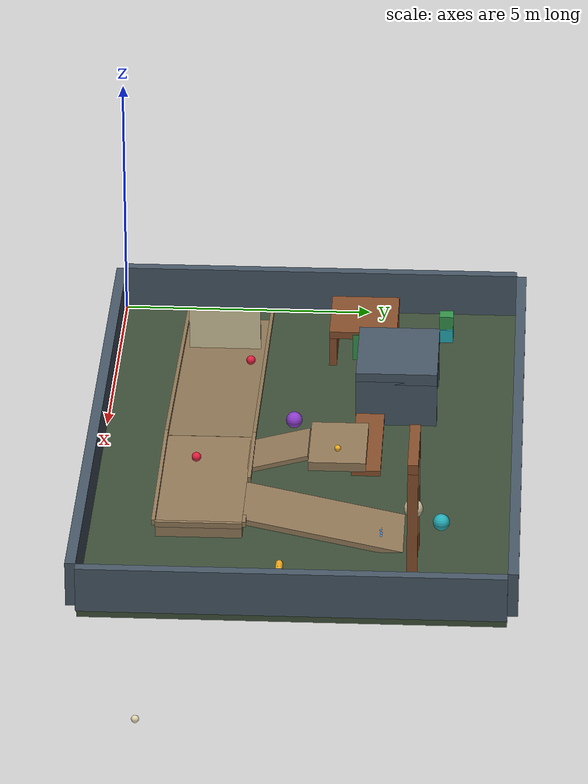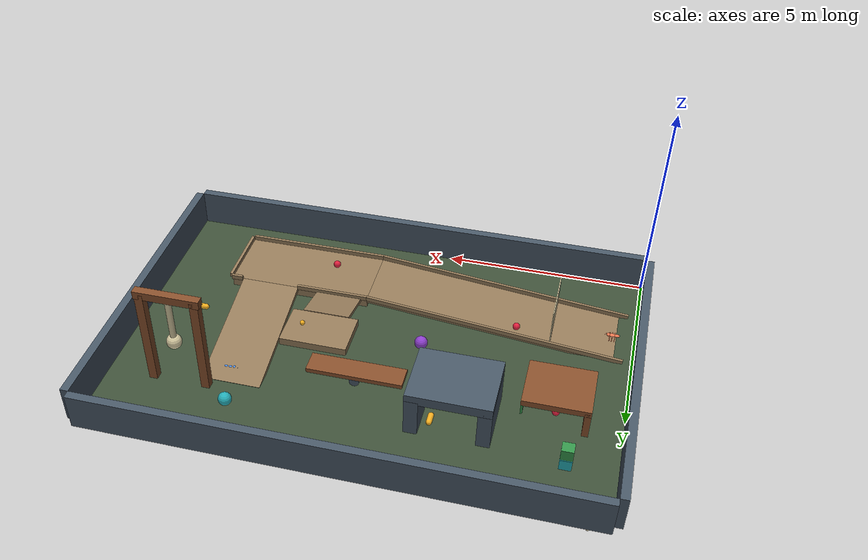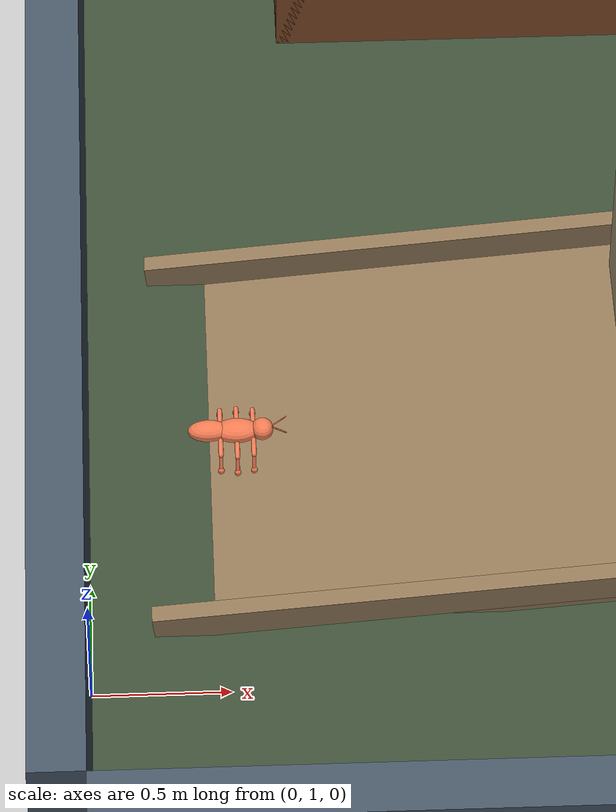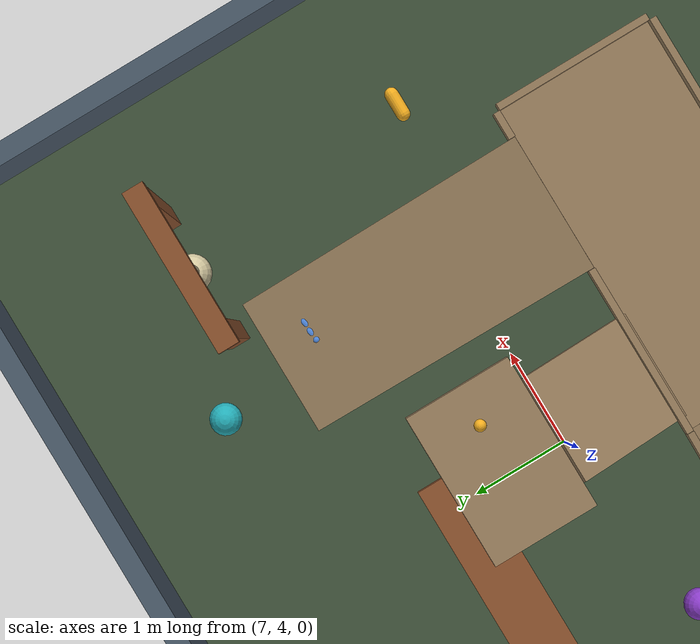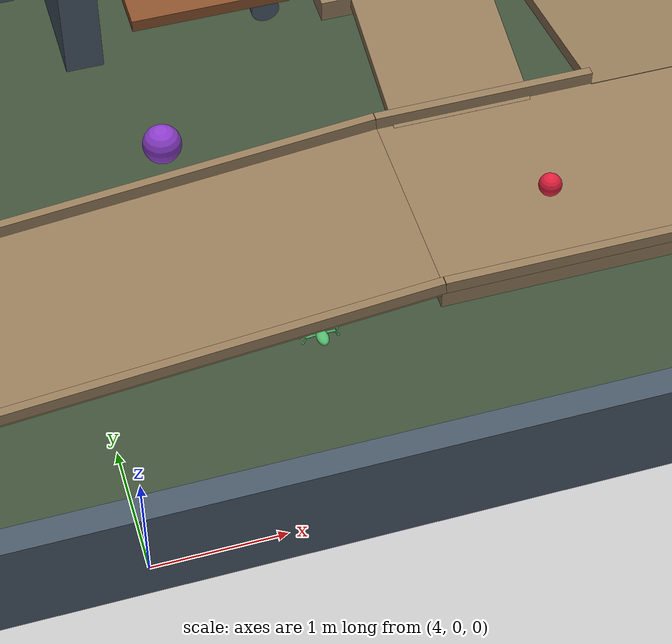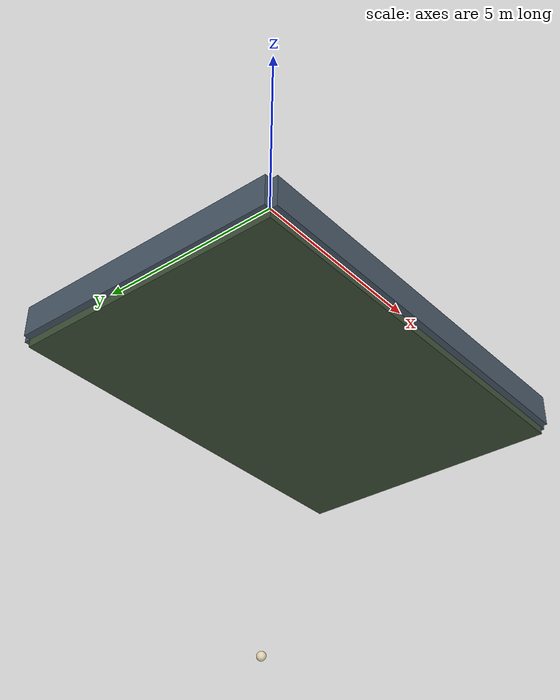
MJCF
<mujoco model="hollow-garden"><compiler angle="degree" coordinate="local"/><option timestep="0.005" gravity="0 0 -9.81" integrator="implicitfast" cone="elliptic"/><size njmax="3000" nconmax="800"/><visual><map znear="0.01"/></visual><asset><material name="mat:soil" rgba="0.24 0.31 0.22 1"/><material name="mat:sandstone" rgba="0.58 0.48 0.35 1"/><material name="mat:slate" rgba="0.28 0.34 0.4 1"/><material name="mat:wood" rgba="0.53 0.31 0.17 1"/><material name="mat:berry" rgba="0.88 0.12 0.24 1"/><material name="mat:nectar" rgba="0.95 0.68 0.12 1"/><material name="mat:violet" rgba="0.55 0.24 0.8 1"/><material name="mat:cyan" rgba="0.14 0.68 0.72 1"/><material name="mat:leaf" rgba="0.2 0.58 0.29 1"/><material name="mat:cream" rgba="0.84 0.79 0.63 1"/><material name="mat:mica" rgba="0.94 0.48 0.32 1"/><material name="mat:fern" rgba="0.32 0.73 0.42 1"/><material name="mat:pip" rgba="0.32 0.55 0.89 1"/></asset><worldbody><light name="caregiver-light" pos="6 4 3" dir="0 0 -1" diffuse="0 0 0" specular="0 0 0" directional="false"/><body name="caregiver-hand" mocap="true" pos="0 0 -10"><geom name="caregiver-hand:geom" type="sphere" size="0.085" rgba="0.95 0.88 0.68 0.75" contype="0" conaffinity="0"/></body><body name="resident:mica" pos="0.55 2.15 0.09" quat="1 0 0 0"><freejoint name="resident:mica:free"/><geom name="resident:mica:geom:thorax" type="ellipsoid" size="0.085 0.055 0.032" pos="0 0 0" material="mat:mica" density="135.0" friction="0.55 0.012 0.002" condim="4"/><geom name="resident:mica:geom:head" type="ellipsoid" size="0.041 0.048 0.032" pos="0.095 0 0.006" material="mat:mica" density="135.0" friction="0.55 0.012 0.002" condim="4"/><geom name="resident:mica:geom:abdomen" type="ellipsoid" size="0.078 0.047 0.03" pos="-0.104 0 0.002" material="mat:mica" density="135.0" friction="0.55 0.012 0.002" condim="4"/><geom name="resident:mica:geom:antenna:left" type="capsule" size="0.0025" fromto="0.126 0 0.018 0.182 0.038 0.026" material="mat:mica" density="45.0" contype="0" conaffinity="0"/><site name="resident:mica:site:antenna:left" type="sphere" size="0.004" pos="0.182 0.038 0.026" rgba="1 1 1 0"/><geom name="resident:mica:geom:antenna:right" type="capsule" size="0.0025" fromto="0.126 0 0.018 0.182 -0.038 0.026" material="mat:mica" density="45.0" contype="0" conaffinity="0"/><site name="resident:mica:site:antenna:right" type="sphere" size="0.004" pos="0.182 -0.038 0.026" rgba="1 1 1 0"/><body name="resident:mica:link:lf:upper" pos="0.061 0.041 -0.006"><joint name="resident:mica:joint:lf:hip" type="hinge" axis="0 0 1" range="-42 42" limited="true" damping="0.02" armature="3.5e-05"/><geom name="resident:mica:geom:lf:upper" type="capsule" size="0.009" fromto="0 0 0 0 0.069 -0.006" material="mat:mica" density="95.0" friction="0.55 0.012 0.002" condim="4"/><body name="resident:mica:link:lf:lower" pos="0 0.069 -0.006"><joint name="resident:mica:joint:lf:knee" type="hinge" axis="1 0 0" range="-58 58" limited="true" damping="0.018" armature="3.5e-05"/><geom name="resident:mica:geom:lf:lower" type="capsule" size="0.007" fromto="0 0 0 0 0.028 -0.054" material="mat:mica" density="95.0" friction="0.55 0.012 0.002" condim="4"/><geom name="resident:mica:geom:lf:tarsus" type="sphere" size="0.012" pos="0 0.028 -0.054" material="mat:mica" density="75.0" friction="3.5 0.035 0.006" condim="4"/><site name="resident:mica:site:lf:tarsus" type="sphere" size="0.0054" pos="0 0.028 -0.054" rgba="1 1 1 0"/></body></body><body name="resident:mica:link:lm:upper" pos="0 0.05 -0.008"><joint name="resident:mica:joint:lm:hip" type="hinge" axis="0 0 1" range="-42 42" limited="true" damping="0.02" armature="3.5e-05"/><geom name="resident:mica:geom:lm:upper" type="capsule" size="0.009" fromto="0 0 0 0 0.069 -0.006" material="mat:mica" density="95.0" friction="0.55 0.012 0.002" condim="4"/><body name="resident:mica:link:lm:lower" pos="0 0.069 -0.006"><joint name="resident:mica:joint:lm:knee" type="hinge" axis="1 0 0" range="-58 58" limited="true" damping="0.018" armature="3.5e-05"/><geom name="resident:mica:geom:lm:lower" type="capsule" size="0.007" fromto="0 0 0 0 0.028 -0.054" material="mat:mica" density="95.0" friction="0.55 0.012 0.002" condim="4"/><geom name="resident:mica:geom:lm:tarsus" type="sphere" size="0.012" pos="0 0.028 -0.054" material="mat:mica" density="75.0" friction="3.5 0.035 0.006" condim="4"/><site name="resident:mica:site:lm:tarsus" type="sphere" size="0.0054" pos="0 0.028 -0.054" rgba="1 1 1 0"/></body></body><body name="resident:mica:link:lh:upper" pos="-0.061 0.041 -0.006"><joint name="resident:mica:joint:lh:hip" type="hinge" axis="0 0 1" range="-42 42" limited="true" damping="0.02" armature="3.5e-05"/><geom name="resident:mica:geom:lh:upper" type="capsule" size="0.009" fromto="0 0 0 0 0.069 -0.006" material="mat:mica" density="95.0" friction="0.55 0.012 0.002" condim="4"/><body name="resident:mica:link:lh:lower" pos="0 0.069 -0.006"><joint name="resident:mica:joint:lh:knee" type="hinge" axis="1 0 0" range="-58 58" limited="true" damping="0.018" armature="3.5e-05"/><geom name="resident:mica:geom:lh:lower" type="capsule" size="0.007" fromto="0 0 0 0 0.028 -0.054" material="mat:mica" density="95.0" friction="0.55 0.012 0.002" condim="4"/><geom name="resident:mica:geom:lh:tarsus" type="sphere" size="0.012" pos="0 0.028 -0.054" material="mat:mica" density="75.0" friction="3.5 0.035 0.006" condim="4"/><site name="resident:mica:site:lh:tarsus" type="sphere" size="0.0054" pos="0 0.028 -0.054" rgba="1 1 1 0"/></body></body><body name="resident:mica:link:rf:upper" pos="0.061 -0.041 -0.006"><joint name="resident:mica:joint:rf:hip" type="hinge" axis="0 0 1" range="-42 42" limited="true" damping="0.02" armature="3.5e-05"/><geom name="resident:mica:geom:rf:upper" type="capsule" size="0.009" fromto="0 0 0 0 -0.069 -0.006" material="mat:mica" density="95.0" friction="0.55 0.012 0.002" condim="4"/><body name="resident:mica:link:rf:lower" pos="0 -0.069 -0.006"><joint name="resident:mica:joint:rf:knee" type="hinge" axis="1 0 0" range="-58 58" limited="true" damping="0.018" armature="3.5e-05"/><geom name="resident:mica:geom:rf:lower" type="capsule" size="0.007" fromto="0 0 0 0 -0.028 -0.054" material="mat:mica" density="95.0" friction="0.55 0.012 0.002" condim="4"/><geom name="resident:mica:geom:rf:tarsus" type="sphere" size="0.012" pos="0 -0.028 -0.054" material="mat:mica" density="75.0" friction="3.5 0.035 0.006" condim="4"/><site name="resident:mica:site:rf:tarsus" type="sphere" size="0.0054" pos="0 -0.028 -0.054" rgba="1 1 1 0"/></body></body><body name="resident:mica:link:rm:upper" pos="0 -0.05 -0.008"><joint name="resident:mica:joint:rm:hip" type="hinge" axis="0 0 1" range="-42 42" limited="true" damping="0.02" armature="3.5e-05"/><geom name="resident:mica:geom:rm:upper" type="capsule" size="0.009" fromto="0 0 0 0 -0.069 -0.006" material="mat:mica" density="95.0" friction="0.55 0.012 0.002" condim="4"/><body name="resident:mica:link:rm:lower" pos="0 -0.069 -0.006"><joint name="resident:mica:joint:rm:knee" type="hinge" axis="1 0 0" range="-58 58" limited="true" damping="0.018" armature="3.5e-05"/><geom name="resident:mica:geom:rm:lower" type="capsule" size="0.007" fromto="0 0 0 0 -0.028 -0.054" material="mat:mica" density="95.0" friction="0.55 0.012 0.002" condim="4"/><geom name="resident:mica:geom:rm:tarsus" type="sphere" size="0.012" pos="0 -0.028 -0.054" material="mat:mica" density="75.0" friction="3.5 0.035 0.006" condim="4"/><site name="resident:mica:site:rm:tarsus" type="sphere" size="0.0054" pos="0 -0.028 -0.054" rgba="1 1 1 0"/></body></body><body name="resident:mica:link:rh:upper" pos="-0.061 -0.041 -0.006"><joint name="resident:mica:joint:rh:hip" type="hinge" axis="0 0 1" range="-42 42" limited="true" damping="0.02" armature="3.5e-05"/><geom name="resident:mica:geom:rh:upper" type="capsule" size="0.009" fromto="0 0 0 0 -0.069 -0.006" material="mat:mica" density="95.0" friction="0.55 0.012 0.002" condim="4"/><body name="resident:mica:link:rh:lower" pos="0 -0.069 -0.006"><joint name="resident:mica:joint:rh:knee" type="hinge" axis="1 0 0" range="-58 58" limited="true" damping="0.018" armature="3.5e-05"/><geom name="resident:mica:geom:rh:lower" type="capsule" size="0.007" fromto="0 0 0 0 -0.028 -0.054" material="mat:mica" density="95.0" friction="0.55 0.012 0.002" condim="4"/><geom name="resident:mica:geom:rh:tarsus" type="sphere" size="0.012" pos="0 -0.028 -0.054" material="mat:mica" density="75.0" friction="3.5 0.035 0.006" condim="4"/><site name="resident:mica:site:rh:tarsus" type="sphere" size="0.0054" pos="0 -0.028 -0.054" rgba="1 1 1 0"/></body></body></body><body name="resident:fern" pos="5.7 1.65 0.075" quat="0.6967067093 0 0 0.7173560909"><freejoint name="resident:fern:free"/><geom name="resident:fern:geom:thorax" type="ellipsoid" size="0.085 0.055 0.032" pos="0 0 0" material="mat:fern" density="135.0" friction="0.55 0.012 0.002" condim="4"/><geom name="resident:fern:geom:head" type="ellipsoid" size="0.041 0.048 0.032" pos="0.095 0 0.006" material="mat:fern" density="135.0" friction="0.55 0.012 0.002" condim="4"/><geom name="resident:fern:geom:abdomen" type="ellipsoid" size="0.078 0.047 0.03" pos="-0.104 0 0.002" material="mat:fern" density="135.0" friction="0.55 0.012 0.002" condim="4"/><geom name="resident:fern:geom:antenna:left" type="capsule" size="0.0025" fromto="0.126 0 0.018 0.182 0.038 0.026" material="mat:fern" density="45.0" contype="0" conaffinity="0"/><site name="resident:fern:site:antenna:left" type="sphere" size="0.004" pos="0.182 0.038 0.026" rgba="1 1 1 0"/><geom name="resident:fern:geom:antenna:right" type="capsule" size="0.0025" fromto="0.126 0 0.018 0.182 -0.038 0.026" material="mat:fern" density="45.0" contype="0" conaffinity="0"/><site name="resident:fern:site:antenna:right" type="sphere" size="0.004" pos="0.182 -0.038 0.026" rgba="1 1 1 0"/><body name="resident:fern:link:lf:upper" pos="0.061 0.041 -0.006"><joint name="resident:fern:joint:lf:hip" type="hinge" axis="0 0 1" range="-42 42" limited="true" damping="0.02" armature="3.5e-05"/><geom name="resident:fern:geom:lf:upper" type="capsule" size="0.009" fromto="0 0 0 0 0.069 -0.006" material="mat:fern" density="95.0" friction="0.55 0.012 0.002" condim="4"/><body name="resident:fern:link:lf:lower" pos="0 0.069 -0.006"><joint name="resident:fern:joint:lf:knee" type="hinge" axis="1 0 0" range="-58 58" limited="true" damping="0.018" armature="3.5e-05"/><geom name="resident:fern:geom:lf:lower" type="capsule" size="0.007" fromto="0 0 0 0 0.028 -0.054" material="mat:fern" density="95.0" friction="0.55 0.012 0.002" condim="4"/><geom name="resident:fern:geom:lf:tarsus" type="sphere" size="0.012" pos="0 0.028 -0.054" material="mat:fern" density="75.0" friction="3.5 0.035 0.006" condim="4"/><site name="resident:fern:site:lf:tarsus" type="sphere" size="0.0054" pos="0 0.028 -0.054" rgba="1 1 1 0"/></body></body><body name="resident:fern:link:lm:upper" pos="0 0.05 -0.008"><joint name="resident:fern:joint:lm:hip" type="hinge" axis="0 0 1" range="-42 42" limited="true" damping="0.02" armature="3.5e-05"/><geom name="resident:fern:geom:lm:upper" type="capsule" size="0.009" fromto="0 0 0 0 0.069 -0.006" material="mat:fern" density="95.0" friction="0.55 0.012 0.002" condim="4"/><body name="resident:fern:link:lm:lower" pos="0 0.069 -0.006"><joint name="resident:fern:joint:lm:knee" type="hinge" axis="1 0 0" range="-58 58" limited="true" damping="0.018" armature="3.5e-05"/><geom name="resident:fern:geom:lm:lower" type="capsule" size="0.007" fromto="0 0 0 0 0.028 -0.054" material="mat:fern" density="95.0" friction="0.55 0.012 0.002" condim="4"/><geom name="resident:fern:geom:lm:tarsus" type="sphere" size="0.012" pos="0 0.028 -0.054" material="mat:fern" density="75.0" friction="3.5 0.035 0.006" condim="4"/><site name="resident:fern:site:lm:tarsus" type="sphere" size="0.0054" pos="0 0.028 -0.054" rgba="1 1 1 0"/></body></body><body name="resident:fern:link:lh:upper" pos="-0.061 0.041 -0.006"><joint name="resident:fern:joint:lh:hip" type="hinge" axis="0 0 1" range="-42 42" limited="true" damping="0.02" armature="3.5e-05"/><geom name="resident:fern:geom:lh:upper" type="capsule" size="0.009" fromto="0 0 0 0 0.069 -0.006" material="mat:fern" density="95.0" friction="0.55 0.012 0.002" condim="4"/><body name="resident:fern:link:lh:lower" pos="0 0.069 -0.006"><joint name="resident:fern:joint:lh:knee" type="hinge" axis="1 0 0" range="-58 58" limited="true" damping="0.018" armature="3.5e-05"/><geom name="resident:fern:geom:lh:lower" type="capsule" size="0.007" fromto="0 0 0 0 0.028 -0.054" material="mat:fern" density="95.0" friction="0.55 0.012 0.002" condim="4"/><geom name="resident:fern:geom:lh:tarsus" type="sphere" size="0.012" pos="0 0.028 -0.054" material="mat:fern" density="75.0" friction="3.5 0.035 0.006" condim="4"/><site name="resident:fern:site:lh:tarsus" type="sphere" size="0.0054" pos="0 0.028 -0.054" rgba="1 1 1 0"/></body></body><body name="resident:fern:link:rf:upper" pos="0.061 -0.041 -0.006"><joint name="resident:fern:joint:rf:hip" type="hinge" axis="0 0 1" range="-42 42" limited="true" damping="0.02" armature="3.5e-05"/><geom name="resident:fern:geom:rf:upper" type="capsule" size="0.009" fromto="0 0 0 0 -0.069 -0.006" material="mat:fern" density="95.0" friction="0.55 0.012 0.002" condim="4"/><body name="resident:fern:link:rf:lower" pos="0 -0.069 -0.006"><joint name="resident:fern:joint:rf:knee" type="hinge" axis="1 0 0" range="-58 58" limited="true" damping="0.018" armature="3.5e-05"/><geom name="resident:fern:geom:rf:lower" type="capsule" size="0.007" fromto="0 0 0 0 -0.028 -0.054" material="mat:fern" density="95.0" friction="0.55 0.012 0.002" condim="4"/><geom name="resident:fern:geom:rf:tarsus" type="sphere" size="0.012" pos="0 -0.028 -0.054" material="mat:fern" density="75.0" friction="3.5 0.035 0.006" condim="4"/><site name="resident:fern:site:rf:tarsus" type="sphere" size="0.0054" pos="0 -0.028 -0.054" rgba="1 1 1 0"/></body></body><body name="resident:fern:link:rm:upper" pos="0 -0.05 -0.008"><joint name="resident:fern:joint:rm:hip" type="hinge" axis="0 0 1" range="-42 42" limited="true" damping="0.02" armature="3.5e-05"/><geom name="resident:fern:geom:rm:upper" type="capsule" size="0.009" fromto="0 0 0 0 -0.069 -0.006" material="mat:fern" density="95.0" friction="0.55 0.012 0.002" condim="4"/><body name="resident:fern:link:rm:lower" pos="0 -0.069 -0.006"><joint name="resident:fern:joint:rm:knee" type="hinge" axis="1 0 0" range="-58 58" limited="true" damping="0.018" armature="3.5e-05"/><geom name="resident:fern:geom:rm:lower" type="capsule" size="0.007" fromto="0 0 0 0 -0.028 -0.054" material="mat:fern" density="95.0" friction="0.55 0.012 0.002" condim="4"/><geom name="resident:fern:geom:rm:tarsus" type="sphere" size="0.012" pos="0 -0.028 -0.054" material="mat:fern" density="75.0" friction="3.5 0.035 0.006" condim="4"/><site name="resident:fern:site:rm:tarsus" type="sphere" size="0.0054" pos="0 -0.028 -0.054" rgba="1 1 1 0"/></body></body><body name="resident:fern:link:rh:upper" pos="-0.061 -0.041 -0.006"><joint name="resident:fern:joint:rh:hip" type="hinge" axis="0 0 1" range="-42 42" limited="true" damping="0.02" armature="3.5e-05"/><geom name="resident:fern:geom:rh:upper" type="capsule" size="0.009" fromto="0 0 0 0 -0.069 -0.006" material="mat:fern" density="95.0" friction="0.55 0.012 0.002" condim="4"/><body name="resident:fern:link:rh:lower" pos="0 -0.069 -0.006"><joint name="resident:fern:joint:rh:knee" type="hinge" axis="1 0 0" range="-58 58" limited="true" damping="0.018" armature="3.5e-05"/><geom name="resident:fern:geom:rh:lower" type="capsule" size="0.007" fromto="0 0 0 0 -0.028 -0.054" material="mat:fern" density="95.0" friction="0.55 0.012 0.002" condim="4"/><geom name="resident:fern:geom:rh:tarsus" type="sphere" size="0.012" pos="0 -0.028 -0.054" material="mat:fern" density="75.0" friction="3.5 0.035 0.006" condim="4"/><site name="resident:fern:site:rh:tarsus" type="sphere" size="0.0054" pos="0 -0.028 -0.054" rgba="1 1 1 0"/></body></body></body><body name="resident:pip" pos="9.2 5.55 0.075" quat="-0.0291995223 0 0 0.999573603"><freejoint name="resident:pip:free"/><geom name="resident:pip:geom:thorax" type="ellipsoid" size="0.085 0.055 0.032" pos="0 0 0" material="mat:pip" density="135.0" friction="0.55 0.012 0.002" condim="4"/><geom name="resident:pip:geom:head" type="ellipsoid" size="0.041 0.048 0.032" pos="0.095 0 0.006" material="mat:pip" density="135.0" friction="0.55 0.012 0.002" condim="4"/><geom name="resident:pip:geom:abdomen" type="ellipsoid" size="0.078 0.047 0.03" pos="-0.104 0 0.002" material="mat:pip" density="135.0" friction="0.55 0.012 0.002" condim="4"/><geom name="resident:pip:geom:antenna:left" type="capsule" size="0.0025" fromto="0.126 0 0.018 0.182 0.038 0.026" material="mat:pip" density="45.0" contype="0" conaffinity="0"/><site name="resident:pip:site:antenna:left" type="sphere" size="0.004" pos="0.182 0.038 0.026" rgba="1 1 1 0"/><geom name="resident:pip:geom:antenna:right" type="capsule" size="0.0025" fromto="0.126 0 0.018 0.182 -0.038 0.026" material="mat:pip" density="45.0" contype="0" conaffinity="0"/><site name="resident:pip:site:antenna:right" type="sphere" size="0.004" pos="0.182 -0.038 0.026" rgba="1 1 1 0"/><body name="resident:pip:link:lf:upper" pos="0.061 0.041 -0.006"><joint name="resident:pip:joint:lf:hip" type="hinge" axis="0 0 1" range="-42 42" limited="true" damping="0.02" armature="3.5e-05"/><geom name="resident:pip:geom:lf:upper" type="capsule" size="0.009" fromto="0 0 0 0 0.069 -0.006" material="mat:pip" density="95.0" friction="0.55 0.012 0.002" condim="4"/><body name="resident:pip:link:lf:lower" pos="0 0.069 -0.006"><joint name="resident:pip:joint:lf:knee" type="hinge" axis="1 0 0" range="-58 58" limited="true" damping="0.018" armature="3.5e-05"/><geom name="resident:pip:geom:lf:lower" type="capsule" size="0.007" fromto="0 0 0 0 0.028 -0.054" material="mat:pip" density="95.0" friction="0.55 0.012 0.002" condim="4"/><geom name="resident:pip:geom:lf:tarsus" type="sphere" size="0.012" pos="0 0.028 -0.054" material="mat:pip" density="75.0" friction="3.5 0.035 0.006" condim="4"/><site name="resident:pip:site:lf:tarsus" type="sphere" size="0.0054" pos="0 0.028 -0.054" rgba="1 1 1 0"/></body></body><body name="resident:pip:link:lm:upper" pos="0 0.05 -0.008"><joint name="resident:pip:joint:lm:hip" type="hinge" axis="0 0 1" range="-42 42" limited="true" damping="0.02" armature="3.5e-05"/><geom name="resident:pip:geom:lm:upper" type="capsule" size="0.009" fromto="0 0 0 0 0.069 -0.006" material="mat:pip" density="95.0" friction="0.55 0.012 0.002" condim="4"/><body name="resident:pip:link:lm:lower" pos="0 0.069 -0.006"><joint name="resident:pip:joint:lm:knee" type="hinge" axis="1 0 0" range="-58 58" limited="true" damping="0.018" armature="3.5e-05"/><geom name="resident:pip:geom:lm:lower" type="capsule" size="0.007" fromto="0 0 0 0 0.028 -0.054" material="mat:pip" density="95.0" friction="0.55 0.012 0.002" condim="4"/><geom name="resident:pip:geom:lm:tarsus" type="sphere" size="0.012" pos="0 0.028 -0.054" material="mat:pip" density="75.0" friction="3.5 0.035 0.006" condim="4"/><site name="resident:pip:site:lm:tarsus" type="sphere" size="0.0054" pos="0 0.028 -0.054" rgba="1 1 1 0"/></body></body><body name="resident:pip:link:lh:upper" pos="-0.061 0.041 -0.006"><joint name="resident:pip:joint:lh:hip" type="hinge" axis="0 0 1" range="-42 42" limited="true" damping="0.02" armature="3.5e-05"/><geom name="resident:pip:geom:lh:upper" type="capsule" size="0.009" fromto="0 0 0 0 0.069 -0.006" material="mat:pip" density="95.0" friction="0.55 0.012 0.002" condim="4"/><body name="resident:pip:link:lh:lower" pos="0 0.069 -0.006"><joint name="resident:pip:joint:lh:knee" type="hinge" axis="1 0 0" range="-58 58" limited="true" damping="0.018" armature="3.5e-05"/><geom name="resident:pip:geom:lh:lower" type="capsule" size="0.007" fromto="0 0 0 0 0.028 -0.054" material="mat:pip" density="95.0" friction="0.55 0.012 0.002" condim="4"/><geom name="resident:pip:geom:lh:tarsus" type="sphere" size="0.012" pos="0 0.028 -0.054" material="mat:pip" density="75.0" friction="3.5 0.035 0.006" condim="4"/><site name="resident:pip:site:lh:tarsus" type="sphere" size="0.0054" pos="0 0.028 -0.054" rgba="1 1 1 0"/></body></body><body name="resident:pip:link:rf:upper" pos="0.061 -0.041 -0.006"><joint name="resident:pip:joint:rf:hip" type="hinge" axis="0 0 1" range="-42 42" limited="true" damping="0.02" armature="3.5e-05"/><geom name="resident:pip:geom:rf:upper" type="capsule" size="0.009" fromto="0 0 0 0 -0.069 -0.006" material="mat:pip" density="95.0" friction="0.55 0.012 0.002" condim="4"/><body name="resident:pip:link:rf:lower" pos="0 -0.069 -0.006"><joint name="resident:pip:joint:rf:knee" type="hinge" axis="1 0 0" range="-58 58" limited="true" damping="0.018" armature="3.5e-05"/><geom name="resident:pip:geom:rf:lower" type="capsule" size="0.007" fromto="0 0 0 0 -0.028 -0.054" material="mat:pip" density="95.0" friction="0.55 0.012 0.002" condim="4"/><geom name="resident:pip:geom:rf:tarsus" type="sphere" size="0.012" pos="0 -0.028 -0.054" material="mat:pip" density="75.0" friction="3.5 0.035 0.006" condim="4"/><site name="resident:pip:site:rf:tarsus" type="sphere" size="0.0054" pos="0 -0.028 -0.054" rgba="1 1 1 0"/></body></body><body name="resident:pip:link:rm:upper" pos="0 -0.05 -0.008"><joint name="resident:pip:joint:rm:hip" type="hinge" axis="0 0 1" range="-42 42" limited="true" damping="0.02" armature="3.5e-05"/><geom name="resident:pip:geom:rm:upper" type="capsule" size="0.009" fromto="0 0 0 0 -0.069 -0.006" material="mat:pip" density="95.0" friction="0.55 0.012 0.002" condim="4"/><body name="resident:pip:link:rm:lower" pos="0 -0.069 -0.006"><joint name="resident:pip:joint:rm:knee" type="hinge" axis="1 0 0" range="-58 58" limited="true" damping="0.018" armature="3.5e-05"/><geom name="resident:pip:geom:rm:lower" type="capsule" size="0.007" fromto="0 0 0 0 -0.028 -0.054" material="mat:pip" density="95.0" friction="0.55 0.012 0.002" condim="4"/><geom name="resident:pip:geom:rm:tarsus" type="sphere" size="0.012" pos="0 -0.028 -0.054" material="mat:pip" density="75.0" friction="3.5 0.035 0.006" condim="4"/><site name="resident:pip:site:rm:tarsus" type="sphere" size="0.0054" pos="0 -0.028 -0.054" rgba="1 1 1 0"/></body></body><body name="resident:pip:link:rh:upper" pos="-0.061 -0.041 -0.006"><joint name="resident:pip:joint:rh:hip" type="hinge" axis="0 0 1" range="-42 42" limited="true" damping="0.02" armature="3.5e-05"/><geom name="resident:pip:geom:rh:upper" type="capsule" size="0.009" fromto="0 0 0 0 -0.069 -0.006" material="mat:pip" density="95.0" friction="0.55 0.012 0.002" condim="4"/><body name="resident:pip:link:rh:lower" pos="0 -0.069 -0.006"><joint name="resident:pip:joint:rh:knee" type="hinge" axis="1 0 0" range="-58 58" limited="true" damping="0.018" armature="3.5e-05"/><geom name="resident:pip:geom:rh:lower" type="capsule" size="0.007" fromto="0 0 0 0 -0.028 -0.054" material="mat:pip" density="95.0" friction="0.55 0.012 0.002" condim="4"/><geom name="resident:pip:geom:rh:tarsus" type="sphere" size="0.012" pos="0 -0.028 -0.054" material="mat:pip" density="75.0" friction="3.5 0.035 0.006" condim="4"/><site name="resident:pip:site:rh:tarsus" type="sphere" size="0.0054" pos="0 -0.028 -0.054" rgba="1 1 1 0"/></body></body></body><body name="entity:ground" pos="6 4 -0.12"><geom name="entity:ground:geom:0" type="box" size="6 4 0.12" material="mat:soil" density="900" friction="1.1 0.02 0.004" condim="4"/></body><body name="entity:west-wall" pos="-0.1 4 0.45"><geom name="entity:west-wall:geom:0" type="box" size="0.1 4 0.45" material="mat:slate" density="1800" friction="0.9 0.015 0.003" condim="4"/></body><body name="entity:east-wall" pos="12.1 4 0.45"><geom name="entity:east-wall:geom:0" type="box" size="0.1 4 0.45" material="mat:slate" density="1800" friction="0.9 0.015 0.003" condim="4"/></body><body name="entity:north-wall" pos="6 -0.1 0.45"><geom name="entity:north-wall:geom:0" type="box" size="6 0.1 0.45" material="mat:slate" density="1800" friction="0.9 0.015 0.003" condim="4"/></body><body name="entity:south-wall" pos="6 8.1 0.45"><geom name="entity:south-wall:geom:0" type="box" size="6 0.1 0.45" material="mat:slate" density="1800" friction="0.9 0.015 0.003" condim="4"/></body><body name="entity:high-walk" pos="8.3 2.15 0.52"><geom name="entity:high-walk:geom:0" type="box" size="1.75 0.82 0.12" material="mat:sandstone" density="1800" friction="0.9 0.015 0.003" condim="4"/><geom name="entity:high-walk:geom:1" type="box" size="1.75 0.035 0.055" pos="0 -0.855 0.175" material="mat:sandstone" density="1800" friction="0.9 0.015 0.003" condim="4"/><geom name="entity:high-walk:geom:2" type="box" size="0.89 0.035 0.055" pos="-0.86 0.855 0.175" material="mat:sandstone" density="1800" friction="0.9 0.015 0.003" condim="4"/><geom name="entity:high-walk:geom:3" type="box" size="0.14 0.035 0.055" pos="1.61 0.855 0.175" material="mat:sandstone" density="1800" friction="0.9 0.015 0.003" condim="4"/><geom name="entity:high-walk:geom:4" type="box" size="0.035 0.82 0.055" pos="1.785 0 0.175" material="mat:sandstone" density="1800" friction="0.9 0.015 0.003" condim="4"/><geom name="entity:high-walk:geom:5" type="box" size="0.56 0.6 0.045" pos="-1.05 1.38 0.232" quat="0.9914772889 0.1302796438 0 0" material="mat:sandstone" density="1800" friction="0.9 0.015 0.003" condim="4"/><geom name="entity:high-walk:geom:6" type="box" size="0.8 0.55 0.09" pos="-1.05 2.52 0.34" material="mat:sandstone" density="1800" friction="0.9 0.015 0.003" condim="4"/></body><body name="entity:west-ramp" pos="3.4 2.15 0.255" quat="0.9986293247 0 -0.05233996461 0"><geom name="entity:west-ramp:geom:0" type="box" size="3.18 0.82 0.055" material="mat:sandstone" density="1800" friction="0.9 0.015 0.003" condim="4"/><geom name="entity:west-ramp:geom:1" type="box" size="3.18 0.035 0.055" pos="0 -0.855 0.11" material="mat:sandstone" density="1800" friction="0.9 0.015 0.003" condim="4"/><geom name="entity:west-ramp:geom:2" type="box" size="3.18 0.035 0.055" pos="0 0.855 0.11" material="mat:sandstone" density="1800" friction="0.9 0.015 0.003" condim="4"/></body><body name="entity:east-ramp" pos="9.05 4.468 0.274" quat="0.994685439 -0.102960563 0 0"><geom name="entity:east-ramp:geom:0" type="box" size="0.72 1.55 0.055" material="mat:sandstone" density="1800" friction="0.9 0.015 0.003" condim="4"/></body><body name="entity:hollow-arch" pos="3.8 5.7 0"><geom name="entity:hollow-arch:geom:0" type="box" size="0.16 0.8 0.48" pos="-0.82 0 0.48" material="mat:slate" density="1800" friction="0.9 0.015 0.003" condim="4"/><geom name="entity:hollow-arch:geom:1" type="box" size="0.16 0.8 0.48" pos="0.82 0 0.48" material="mat:slate" density="1800" friction="0.9 0.015 0.003" condim="4"/><geom name="entity:hollow-arch:geom:2" type="box" size="0.98 0.8 0.12" pos="0 0 1.02" material="mat:slate" density="1800" friction="0.9 0.015 0.003" condim="4"/></body><body name="entity:nook-canopy" pos="1.55 4.95 0"><geom name="entity:nook-canopy:geom:0" type="box" size="0.78 0.68 0.075" pos="0 0 0.68" material="mat:wood" density="520" friction="0.75 0.012 0.002" condim="4"/><geom name="entity:nook-canopy:geom:1" type="box" size="0.075 0.68 0.34" pos="-0.705 0 0.34" material="mat:wood" density="520" friction="0.75 0.012 0.002" condim="4"/><geom name="entity:nook-canopy:geom:2" type="box" size="0.78 0.075 0.34" pos="0 -0.605 0.34" material="mat:wood" density="520" friction="0.75 0.012 0.002" condim="4"/></body><body name="entity:nook-flap" pos="2.31 5.08 0.7"><joint name="entity:nook-flap:hinge" type="hinge" axis="0 1 0" range="-82 32" limited="true" damping="0.025" armature="0.001"/><geom name="entity:nook-flap:geom:0" type="box" size="0.025 0.34 0.28" pos="0 0 -0.28" material="mat:leaf" density="35" friction="0.65 0.01 0.002" condim="4"/></body><body name="entity:hollow-light" pos="3.8 5.7 0.78"><geom name="entity:hollow-light:geom:0" type="sphere" size="0.055" material="mat:cyan" density="35" friction="0.65 0.01 0.002" condim="4"/><light name="entity:hollow-light:light:0" mode="fixed" pos="0 0 0" dir="0 0 -1" diffuse="0.124 0.4464 0.5084" specular="0.0186 0.06696 0.07626" directional="false" castshadow="true" cutoff="70" exponent="1.0"/></body><body name="entity:lookout-light" pos="7.65 4.67 1.05"><geom name="entity:lookout-light:geom:0" type="sphere" size="0.06" material="mat:nectar" density="35" friction="0.65 0.01 0.002" condim="4"/><light name="entity:lookout-light:light:0" mode="fixed" pos="0 0 0" dir="0 0 -1" diffuse="0.78 0.4524 0.156" specular="0.117 0.06786 0.0234" directional="false" castshadow="true" cutoff="70" exponent="1.0"/></body><body name="entity:seesaw" pos="6.2 5.2 0.34"><joint name="entity:seesaw:hinge" type="hinge" axis="0 1 0" range="-24 24" limited="true" damping="0.08" armature="0.001"/><geom name="entity:seesaw:geom:0" type="box" size="1.15 0.28 0.055" material="mat:wood" density="520" friction="0.75 0.012 0.002" condim="4"/></body><body name="entity:seesaw-fulcrum" pos="6.2 5.2 0.2"><geom name="entity:seesaw-fulcrum:geom:0" type="cylinder" size="0.12 0.25" quat="0.7071067812 0.7071067812 0 0" material="mat:slate" density="1800" friction="0.9 0.015 0.003" condim="4"/></body><body name="entity:pendulum-frame" pos="10.2 6.2 0"><geom name="entity:pendulum-frame:geom:0" type="box" size="0.1 0.1 1.25" pos="-0.65 0 1.25" material="mat:wood" density="520" friction="0.75 0.012 0.002" condim="4"/><geom name="entity:pendulum-frame:geom:1" type="box" size="0.1 0.1 1.25" pos="0.65 0 1.25" material="mat:wood" density="520" friction="0.75 0.012 0.002" condim="4"/><geom name="entity:pendulum-frame:geom:2" type="box" size="0.78 0.1 0.1" pos="0 0 2.48" material="mat:wood" density="520" friction="0.75 0.012 0.002" condim="4"/></body><body name="entity:pendulum" pos="10.2 6.2 2.42"><joint name="entity:pendulum:hinge" type="hinge" axis="0 1 0" range="-70 70" limited="true" damping="0.025" armature="0.001"/><geom name="entity:pendulum:geom:0" type="capsule" size="0.075" fromto="0 0 -0.02 0 0 -1.12" material="mat:cream" density="520" friction="0.75 0.012 0.002" condim="4"/><geom name="entity:pendulum:geom:1" type="sphere" size="0.18" pos="0 0 -1.2" material="mat:cream" density="520" friction="0.75 0.012 0.002" condim="4"/></body><body name="entity:berry-a" pos="2.85 2.72 0.35"><freejoint name="entity:berry-a:free"/><geom name="entity:berry-a:geom:0" type="sphere" size="0.09" material="mat:berry" density="35" friction="0.65 0.01 0.002" condim="4"/></body><body name="entity:berry-nook" pos="1.55 5.15 0.13"><freejoint name="entity:berry-nook:free"/><geom name="entity:berry-nook:geom:0" type="sphere" size="0.09" material="mat:berry" density="35" friction="0.65 0.01 0.002" condim="4"/></body><body name="entity:berry-b" pos="7.6 1.95 0.76"><freejoint name="entity:berry-b:free"/><geom name="entity:berry-b:geom:0" type="sphere" size="0.09" material="mat:berry" density="35" friction="0.65 0.01 0.002" condim="4"/></body><body name="entity:nectar-a" pos="4.25 6.1 0.15" quat="0.7071067812 0.7071067812 0 0"><freejoint name="entity:nectar-a:free"/><geom name="entity:nectar-a:geom:0" type="capsule" size="0.07 0.11" material="mat:nectar" density="35" friction="0.65 0.01 0.002" condim="4"/></body><body name="entity:nectar-b" pos="10.65 3.7 0.15" quat="0.7071067812 0 0.7071067812 0"><freejoint name="entity:nectar-b:free"/><geom name="entity:nectar-b:geom:0" type="capsule" size="0.07 0.11" material="mat:nectar" density="35" friction="0.65 0.01 0.002" condim="4"/></body><body name="entity:violet-ball" pos="5 3.7 0.19"><freejoint name="entity:violet-ball:free"/><geom name="entity:violet-ball:geom:0" type="sphere" size="0.16" material="mat:violet" density="35" friction="0.65 0.01 0.002" condim="4"/></body><body name="entity:cyan-ball" pos="8.9 6.7 0.19"><freejoint name="entity:cyan-ball:free"/><geom name="entity:cyan-ball:geom:0" type="sphere" size="0.16" material="mat:cyan" density="35" friction="0.65 0.01 0.002" condim="4"/></body><body name="entity:stack-box-a" pos="1.15 6.6 0.16"><freejoint name="entity:stack-box-a:free"/><geom name="entity:stack-box-a:geom:0" type="box" size="0.14 0.14 0.14" material="mat:cyan" density="35" friction="0.65 0.01 0.002" condim="4"/></body><body name="entity:stack-box-b" pos="1.15 6.6 0.46"><freejoint name="entity:stack-box-b:free"/><geom name="entity:stack-box-b:geom:0" type="box" size="0.14 0.14 0.14" material="mat:leaf" density="35" friction="0.65 0.01 0.002" condim="4"/></body><body name="entity:physical-screen" pos="2 2.15 0.55"><geom name="entity:physical-screen:geom:0" type="box" size="0.012 0.72 0.5" material="mat:cream" density="1800" friction="0.9 0.015 0.003" condim="4"/></body></worldbody></mujoco>
